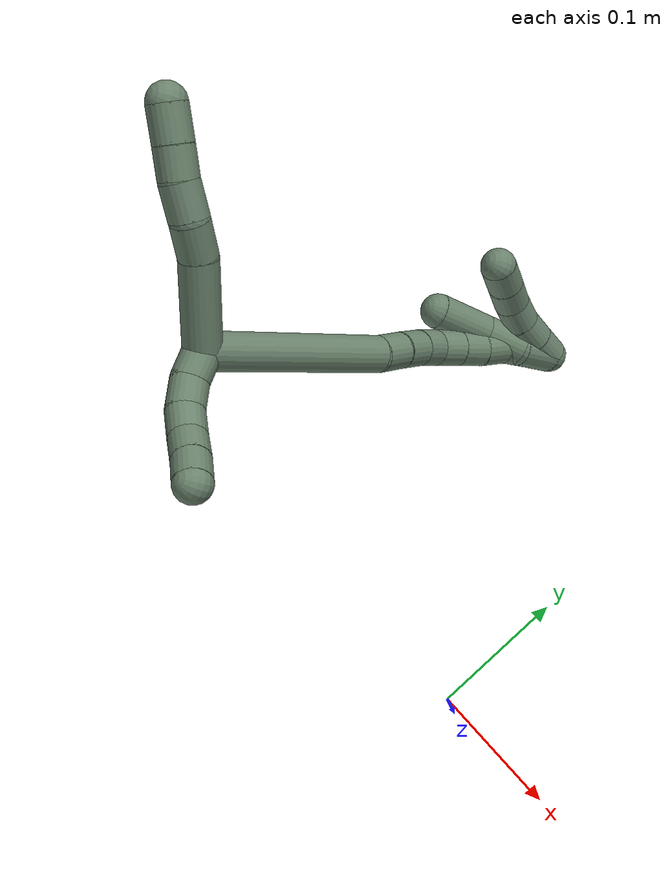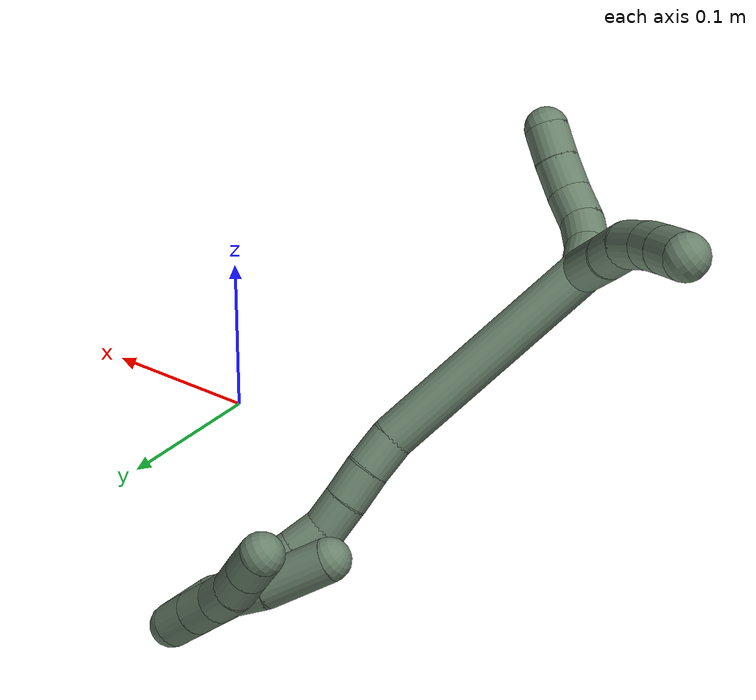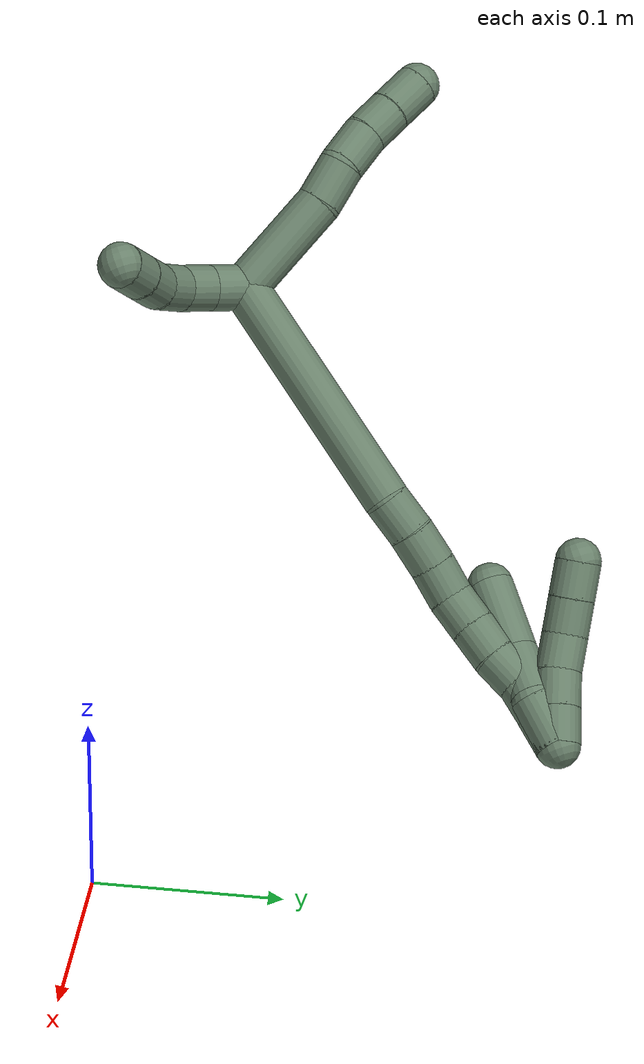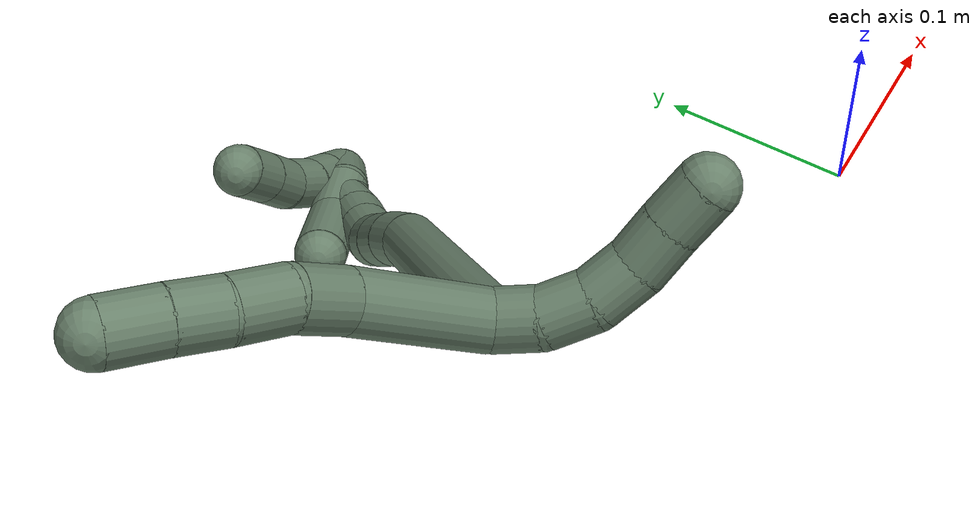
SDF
<sdf version="1.7">
 <world name="default">
  <model name="17">
   <static>0</static>
   <link name="17">
    <collision name="collision-cylinder-e_1_2_8">
     <pose>-0.00424 0.025699 0.015183 -1.03716 -0.141094 0.080609</pose>
     <geometry><cylinder><radius>0.0125</radius><length>0.060297</length></cylinder></geometry>
     <surface>
      <friction><ode><mu>1.16</mu><mu2>1.16</mu2><slip1>0</slip1><slip2>0</slip2></ode></friction>
      <contact><ode><kp>1e+06</kp><kd>1</kd><max_vel>0</max_vel><min_depth>0.001</min_depth></ode></contact>
     </surface>
    </collision>
    <visual name="visual-cylinder-e_1_2_8">
     <pose>-0.00424 0.025699 0.015183 -1.03716 -0.141094 0.080609</pose>
     <geometry><cylinder><radius>0.0125</radius><length>0.060297</length></cylinder></geometry>
     <material><ambient>0.415686 0.509804 0.423529 1</ambient></material>
    </visual>
    <collision name="collision-cylinder-e_2_8_9">
     <pose>-0.010017 0.060214 0.038156 -0.84715 -0.129978 0.058669</pose>
     <geometry><cylinder><radius>0.0125</radius><length>0.02373</length></cylinder></geometry>
     <surface>
      <friction><ode><mu>1.16</mu><mu2>1.16</mu2><slip1>0</slip1><slip2>0</slip2></ode></friction>
      <contact><ode><kp>1e+06</kp><kd>1</kd><max_vel>0</max_vel><min_depth>0.001</min_depth></ode></contact>
     </surface>
    </collision>
    <visual name="visual-cylinder-e_2_8_9">
     <pose>-0.010017 0.060214 0.038156 -0.84715 -0.129978 0.058669</pose>
     <geometry><cylinder><radius>0.0125</radius><length>0.02373</length></cylinder></geometry>
     <material><ambient>0.415686 0.509804 0.423529 1</ambient></material>
    </visual>
    <collision name="collision-cylinder-e_3_9_10">
     <pose>-0.016032 0.077226 0.052712 -0.880683 -0.398728 0.189837</pose>
     <geometry><cylinder><radius>0.0125</radius><length>0.023064</length></cylinder></geometry>
     <surface>
      <friction><ode><mu>1.16</mu><mu2>1.16</mu2><slip1>0</slip1><slip2>0</slip2></ode></friction>
      <contact><ode><kp>1e+06</kp><kd>1</kd><max_vel>0</max_vel><min_depth>0.001</min_depth></ode></contact>
     </surface>
    </collision>
    <visual name="visual-cylinder-e_3_9_10">
     <pose>-0.016032 0.077226 0.052712 -0.880683 -0.398728 0.189837</pose>
     <geometry><cylinder><radius>0.0125</radius><length>0.023064</length></cylinder></geometry>
     <material><ambient>0.415686 0.509804 0.423529 1</ambient></material>
    </visual>
    <collision name="collision-cylinder-e_4_10_11">
     <pose>-0.02476 0.093183 0.064231 -1.02123 -0.436905 0.24744</pose>
     <geometry><cylinder><radius>0.0125</radius><length>0.02009</length></cylinder></geometry>
     <surface>
      <friction><ode><mu>1.16</mu><mu2>1.16</mu2><slip1>0</slip1><slip2>0</slip2></ode></friction>
      <contact><ode><kp>1e+06</kp><kd>1</kd><max_vel>0</max_vel><min_depth>0.001</min_depth></ode></contact>
     </surface>
    </collision>
    <visual name="visual-cylinder-e_4_10_11">
     <pose>-0.02476 0.093183 0.064231 -1.02123 -0.436905 0.24744</pose>
     <geometry><cylinder><radius>0.0125</radius><length>0.02009</length></cylinder></geometry>
     <material><ambient>0.415686 0.509804 0.423529 1</ambient></material>
    </visual>
    <collision name="collision-cylinder-e_5_11_6">
     <pose>-0.034213 0.109582 0.074324 -1.01719 -0.473469 0.267407</pose>
     <geometry><cylinder><radius>0.0125</radius><length>0.022819</length></cylinder></geometry>
     <surface>
      <friction><ode><mu>1.16</mu><mu2>1.16</mu2><slip1>0</slip1><slip2>0</slip2></ode></friction>
      <contact><ode><kp>1e+06</kp><kd>1</kd><max_vel>0</max_vel><min_depth>0.001</min_depth></ode></contact>
     </surface>
    </collision>
    <visual name="visual-cylinder-e_5_11_6">
     <pose>-0.034213 0.109582 0.074324 -1.01719 -0.473469 0.267407</pose>
     <geometry><cylinder><radius>0.0125</radius><length>0.022819</length></cylinder></geometry>
     <material><ambient>0.415686 0.509804 0.423529 1</ambient></material>
    </visual>
    <collision name="collision-cylinder-e_1_2_12">
     <pose>0.005417 -0.008173 0.001964 1.33492 0.572466 0.455856</pose>
     <geometry><cylinder><radius>0.0125</radius><length>0.02</length></cylinder></geometry>
     <surface>
      <friction><ode><mu>1.16</mu><mu2>1.16</mu2><slip1>0</slip1><slip2>0</slip2></ode></friction>
      <contact><ode><kp>1e+06</kp><kd>1</kd><max_vel>0</max_vel><min_depth>0.001</min_depth></ode></contact>
     </surface>
    </collision>
    <visual name="visual-cylinder-e_1_2_12">
     <pose>0.005417 -0.008173 0.001964 1.33492 0.572466 0.455856</pose>
     <geometry><cylinder><radius>0.0125</radius><length>0.02</length></cylinder></geometry>
     <material><ambient>0.415686 0.509804 0.423529 1</ambient></material>
    </visual>
    <collision name="collision-cylinder-e_2_12_13">
     <pose>0.018472 -0.022732 0.004869 1.42464 0.869164 0.762481</pose>
     <geometry><cylinder><radius>0.0125</radius><length>0.02</length></cylinder></geometry>
     <surface>
      <friction><ode><mu>1.16</mu><mu2>1.16</mu2><slip1>0</slip1><slip2>0</slip2></ode></friction>
      <contact><ode><kp>1e+06</kp><kd>1</kd><max_vel>0</max_vel><min_depth>0.001</min_depth></ode></contact>
     </surface>
    </collision>
    <visual name="visual-cylinder-e_2_12_13">
     <pose>0.018472 -0.022732 0.004869 1.42464 0.869164 0.762481</pose>
     <geometry><cylinder><radius>0.0125</radius><length>0.02</length></cylinder></geometry>
     <material><ambient>0.415686 0.509804 0.423529 1</ambient></material>
    </visual>
    <collision name="collision-cylinder-e_3_13_14">
     <pose>0.035342 -0.032951 0.00606 1.50524 1.17647 1.1167</pose>
     <geometry><cylinder><radius>0.0125</radius><length>0.02</length></cylinder></geometry>
     <surface>
      <friction><ode><mu>1.16</mu><mu2>1.16</mu2><slip1>0</slip1><slip2>0</slip2></ode></friction>
      <contact><ode><kp>1e+06</kp><kd>1</kd><max_vel>0</max_vel><min_depth>0.001</min_depth></ode></contact>
     </surface>
    </collision>
    <visual name="visual-cylinder-e_3_13_14">
     <pose>0.035342 -0.032951 0.00606 1.50524 1.17647 1.1167</pose>
     <geometry><cylinder><radius>0.0125</radius><length>0.02</length></cylinder></geometry>
     <material><ambient>0.415686 0.509804 0.423529 1</ambient></material>
    </visual>
    <collision name="collision-cylinder-e_4_14_15">
     <pose>0.054307 -0.038429 0.007921 0.7963 1.33862 0.642473</pose>
     <geometry><cylinder><radius>0.0125</radius><length>0.02</length></cylinder></geometry>
     <surface>
      <friction><ode><mu>1.16</mu><mu2>1.16</mu2><slip1>0</slip1><slip2>0</slip2></ode></friction>
      <contact><ode><kp>1e+06</kp><kd>1</kd><max_vel>0</max_vel><min_depth>0.001</min_depth></ode></contact>
     </surface>
    </collision>
    <visual name="visual-cylinder-e_4_14_15">
     <pose>0.054307 -0.038429 0.007921 0.7963 1.33862 0.642473</pose>
     <geometry><cylinder><radius>0.0125</radius><length>0.02</length></cylinder></geometry>
     <material><ambient>0.415686 0.509804 0.423529 1</ambient></material>
    </visual>
    <collision name="collision-cylinder-e_5_15_5">
     <pose>0.073632 -0.042028 0.011567 0.764555 1.28465 0.584388</pose>
     <geometry><cylinder><radius>0.0125</radius><length>0.02</length></cylinder></geometry>
     <surface>
      <friction><ode><mu>1.16</mu><mu2>1.16</mu2><slip1>0</slip1><slip2>0</slip2></ode></friction>
      <contact><ode><kp>1e+06</kp><kd>1</kd><max_vel>0</max_vel><min_depth>0.001</min_depth></ode></contact>
     </surface>
    </collision>
    <visual name="visual-cylinder-e_5_15_5">
     <pose>0.073632 -0.042028 0.011567 0.764555 1.28465 0.584388</pose>
     <geometry><cylinder><radius>0.0125</radius><length>0.02</length></cylinder></geometry>
     <material><ambient>0.415686 0.509804 0.423529 1</ambient></material>
    </visual>
    <collision name="collision-cylinder-e_1_2_16">
     <pose>-0.009927 0.015729 -0.066116 -2.90803 -0.14504 1.10892</pose>
     <geometry><cylinder><radius>0.0125</radius><length>0.137365</length></cylinder></geometry>
     <surface>
      <friction><ode><mu>1.16</mu><mu2>1.16</mu2><slip1>0</slip1><slip2>0</slip2></ode></friction>
      <contact><ode><kp>1e+06</kp><kd>1</kd><max_vel>0</max_vel><min_depth>0.001</min_depth></ode></contact>
     </surface>
    </collision>
    <visual name="visual-cylinder-e_1_2_16">
     <pose>-0.009927 0.015729 -0.066116 -2.90803 -0.14504 1.10892</pose>
     <geometry><cylinder><radius>0.0125</radius><length>0.137365</length></cylinder></geometry>
     <material><ambient>0.415686 0.509804 0.423529 1</ambient></material>
    </visual>
    <collision name="collision-cylinder-e_2_16_17">
     <pose>-0.023357 0.034191 -0.142005 -2.86892 -0.332447 1.77069</pose>
     <geometry><cylinder><radius>0.0125</radius><length>0.021472</length></cylinder></geometry>
     <surface>
      <friction><ode><mu>1.16</mu><mu2>1.16</mu2><slip1>0</slip1><slip2>0</slip2></ode></friction>
      <contact><ode><kp>1e+06</kp><kd>1</kd><max_vel>0</max_vel><min_depth>0.001</min_depth></ode></contact>
     </surface>
    </collision>
    <visual name="visual-cylinder-e_2_16_17">
     <pose>-0.023357 0.034191 -0.142005 -2.86892 -0.332447 1.77069</pose>
     <geometry><cylinder><radius>0.0125</radius><length>0.021472</length></cylinder></geometry>
     <material><ambient>0.415686 0.509804 0.423529 1</ambient></material>
    </visual>
    <collision name="collision-cylinder-e_3_17_18">
     <pose>-0.030819 0.038771 -0.161346 -2.95087 -0.385863 2.23098</pose>
     <geometry><cylinder><radius>0.0125</radius><length>0.021034</length></cylinder></geometry>
     <surface>
      <friction><ode><mu>1.16</mu><mu2>1.16</mu2><slip1>0</slip1><slip2>0</slip2></ode></friction>
      <contact><ode><kp>1e+06</kp><kd>1</kd><max_vel>0</max_vel><min_depth>0.001</min_depth></ode></contact>
     </surface>
    </collision>
    <visual name="visual-cylinder-e_3_17_18">
     <pose>-0.030819 0.038771 -0.161346 -2.95087 -0.385863 2.23098</pose>
     <geometry><cylinder><radius>0.0125</radius><length>0.021034</length></cylinder></geometry>
     <material><ambient>0.415686 0.509804 0.423529 1</ambient></material>
    </visual>
    <collision name="collision-cylinder-e_4_18_19">
     <pose>-0.038127 0.0419 -0.180278 -3.00556 -0.340519 2.3871</pose>
     <geometry><cylinder><radius>0.0125</radius><length>0.020056</length></cylinder></geometry>
     <surface>
      <friction><ode><mu>1.16</mu><mu2>1.16</mu2><slip1>0</slip1><slip2>0</slip2></ode></friction>
      <contact><ode><kp>1e+06</kp><kd>1</kd><max_vel>0</max_vel><min_depth>0.001</min_depth></ode></contact>
     </surface>
    </collision>
    <visual name="visual-cylinder-e_4_18_19">
     <pose>-0.038127 0.0419 -0.180278 -3.00556 -0.340519 2.3871</pose>
     <geometry><cylinder><radius>0.0125</radius><length>0.020056</length></cylinder></geometry>
     <material><ambient>0.415686 0.509804 0.423529 1</ambient></material>
    </visual>
    <collision name="collision-cylinder-e_5_19_20">
     <pose>-0.042137 0.046052 -0.199224 -2.85053 -0.065978 0.442927</pose>
     <geometry><cylinder><radius>0.0125</radius><length>0.020047</length></cylinder></geometry>
     <surface>
      <friction><ode><mu>1.16</mu><mu2>1.16</mu2><slip1>0</slip1><slip2>0</slip2></ode></friction>
      <contact><ode><kp>1e+06</kp><kd>1</kd><max_vel>0</max_vel><min_depth>0.001</min_depth></ode></contact>
     </surface>
    </collision>
    <visual name="visual-cylinder-e_5_19_20">
     <pose>-0.042137 0.046052 -0.199224 -2.85053 -0.065978 0.442927</pose>
     <geometry><cylinder><radius>0.0125</radius><length>0.020047</length></cylinder></geometry>
     <material><ambient>0.415686 0.509804 0.423529 1</ambient></material>
    </visual>
    <collision name="collision-cylinder-e_6_20_21">
     <pose>-0.043183 0.051811 -0.218383 -2.84868 -0.038542 0.259842</pose>
     <geometry><cylinder><radius>0.0125</radius><length>0.020023</length></cylinder></geometry>
     <surface>
      <friction><ode><mu>1.16</mu><mu2>1.16</mu2><slip1>0</slip1><slip2>0</slip2></ode></friction>
      <contact><ode><kp>1e+06</kp><kd>1</kd><max_vel>0</max_vel><min_depth>0.001</min_depth></ode></contact>
     </surface>
    </collision>
    <visual name="visual-cylinder-e_6_20_21">
     <pose>-0.043183 0.051811 -0.218383 -2.84868 -0.038542 0.259842</pose>
     <geometry><cylinder><radius>0.0125</radius><length>0.020023</length></cylinder></geometry>
     <material><ambient>0.415686 0.509804 0.423529 1</ambient></material>
    </visual>
    <collision name="collision-cylinder-e_7_21_22">
     <pose>-0.044254 0.058699 -0.237101 -2.72908 -0.068537 0.324804</pose>
     <geometry><cylinder><radius>0.0125</radius><length>0.02</length></cylinder></geometry>
     <surface>
      <friction><ode><mu>1.16</mu><mu2>1.16</mu2><slip1>0</slip1><slip2>0</slip2></ode></friction>
      <contact><ode><kp>1e+06</kp><kd>1</kd><max_vel>0</max_vel><min_depth>0.001</min_depth></ode></contact>
     </surface>
    </collision>
    <visual name="visual-cylinder-e_7_21_22">
     <pose>-0.044254 0.058699 -0.237101 -2.72908 -0.068537 0.324804</pose>
     <geometry><cylinder><radius>0.0125</radius><length>0.02</length></cylinder></geometry>
     <material><ambient>0.415686 0.509804 0.423529 1</ambient></material>
    </visual>
    <collision name="collision-cylinder-e_8_22_23">
     <pose>-0.04398 0.06491 -0.255946 -2.91768 0.096068 -0.80811</pose>
     <geometry><cylinder><radius>0.0125</radius><length>0.020001</length></cylinder></geometry>
     <surface>
      <friction><ode><mu>1.16</mu><mu2>1.16</mu2><slip1>0</slip1><slip2>0</slip2></ode></friction>
      <contact><ode><kp>1e+06</kp><kd>1</kd><max_vel>0</max_vel><min_depth>0.001</min_depth></ode></contact>
     </surface>
    </collision>
    <visual name="visual-cylinder-e_8_22_23">
     <pose>-0.04398 0.06491 -0.255946 -2.91768 0.096068 -0.80811</pose>
     <geometry><cylinder><radius>0.0125</radius><length>0.020001</length></cylinder></geometry>
     <material><ambient>0.415686 0.509804 0.423529 1</ambient></material>
    </visual>
    <collision name="collision-cylinder-e_9_23_1">
     <pose>-0.042072 0.069083 -0.275412 -2.94305 0.094959 -0.890263</pose>
     <geometry><cylinder><radius>0.0125</radius><length>0.020001</length></cylinder></geometry>
     <surface>
      <friction><ode><mu>1.16</mu><mu2>1.16</mu2><slip1>0</slip1><slip2>0</slip2></ode></friction>
      <contact><ode><kp>1e+06</kp><kd>1</kd><max_vel>0</max_vel><min_depth>0.001</min_depth></ode></contact>
     </surface>
    </collision>
    <visual name="visual-cylinder-e_9_23_1">
     <pose>-0.042072 0.069083 -0.275412 -2.94305 0.094959 -0.890263</pose>
     <geometry><cylinder><radius>0.0125</radius><length>0.020001</length></cylinder></geometry>
     <material><ambient>0.415686 0.509804 0.423529 1</ambient></material>
    </visual>
    <collision name="collision-cylinder-e_1_1_24">
     <pose>-0.041226 0.068886 -0.271018 0.151546 -0.007122 -0.000541</pose>
     <geometry><cylinder><radius>0.0125</radius><length>0.028637</length></cylinder></geometry>
     <surface>
      <friction><ode><mu>1.16</mu><mu2>1.16</mu2><slip1>0</slip1><slip2>0</slip2></ode></friction>
      <contact><ode><kp>1e+06</kp><kd>1</kd><max_vel>0</max_vel><min_depth>0.001</min_depth></ode></contact>
     </surface>
    </collision>
    <visual name="visual-cylinder-e_1_1_24">
     <pose>-0.041226 0.068886 -0.271018 0.151546 -0.007122 -0.000541</pose>
     <geometry><cylinder><radius>0.0125</radius><length>0.028637</length></cylinder></geometry>
     <material><ambient>0.415686 0.509804 0.423529 1</ambient></material>
    </visual>
    <collision name="collision-cylinder-e_2_24_25">
     <pose>-0.046518 0.065529 -0.24267 0.084008 -0.349377 -0.014835</pose>
     <geometry><cylinder><radius>0.0125</radius><length>0.030323</length></cylinder></geometry>
     <surface>
      <friction><ode><mu>1.16</mu><mu2>1.16</mu2><slip1>0</slip1><slip2>0</slip2></ode></friction>
      <contact><ode><kp>1e+06</kp><kd>1</kd><max_vel>0</max_vel><min_depth>0.001</min_depth></ode></contact>
     </surface>
    </collision>
    <visual name="visual-cylinder-e_2_24_25">
     <pose>-0.046518 0.065529 -0.24267 0.084008 -0.349377 -0.014835</pose>
     <geometry><cylinder><radius>0.0125</radius><length>0.030323</length></cylinder></geometry>
     <material><ambient>0.415686 0.509804 0.423529 1</ambient></material>
    </visual>
    <collision name="collision-cylinder-e_3_25_4">
     <pose>-0.055255 0.063585 -0.208277 0.037043 -0.173752 -0.003227</pose>
     <geometry><cylinder><radius>0.0125</radius><length>0.041041</length></cylinder></geometry>
     <surface>
      <friction><ode><mu>1.16</mu><mu2>1.16</mu2><slip1>0</slip1><slip2>0</slip2></ode></friction>
      <contact><ode><kp>1e+06</kp><kd>1</kd><max_vel>0</max_vel><min_depth>0.001</min_depth></ode></contact>
     </surface>
    </collision>
    <visual name="visual-cylinder-e_3_25_4">
     <pose>-0.055255 0.063585 -0.208277 0.037043 -0.173752 -0.003227</pose>
     <geometry><cylinder><radius>0.0125</radius><length>0.041041</length></cylinder></geometry>
     <material><ambient>0.415686 0.509804 0.423529 1</ambient></material>
    </visual>
    <collision name="collision-cylinder-e_1_1_26">
     <pose>-0.042115 0.074189 -0.27573 -0.321192 -0.099265 0.016093</pose>
     <geometry><cylinder><radius>0.0125</radius><length>0.02</length></cylinder></geometry>
     <surface>
      <friction><ode><mu>1.16</mu><mu2>1.16</mu2><slip1>0</slip1><slip2>0</slip2></ode></friction>
      <contact><ode><kp>1e+06</kp><kd>1</kd><max_vel>0</max_vel><min_depth>0.001</min_depth></ode></contact>
     </surface>
    </collision>
    <visual name="visual-cylinder-e_1_1_26">
     <pose>-0.042115 0.074189 -0.27573 -0.321192 -0.099265 0.016093</pose>
     <geometry><cylinder><radius>0.0125</radius><length>0.02</length></cylinder></geometry>
     <material><ambient>0.415686 0.509804 0.423529 1</ambient></material>
    </visual>
    <collision name="collision-cylinder-e_2_26_27">
     <pose>-0.044294 0.08061 -0.256917 -0.336646 -0.119089 0.02026</pose>
     <geometry><cylinder><radius>0.0125</radius><length>0.02</length></cylinder></geometry>
     <surface>
      <friction><ode><mu>1.16</mu><mu2>1.16</mu2><slip1>0</slip1><slip2>0</slip2></ode></friction>
      <contact><ode><kp>1e+06</kp><kd>1</kd><max_vel>0</max_vel><min_depth>0.001</min_depth></ode></contact>
     </surface>
    </collision>
    <visual name="visual-cylinder-e_2_26_27">
     <pose>-0.044294 0.08061 -0.256917 -0.336646 -0.119089 0.02026</pose>
     <geometry><cylinder><radius>0.0125</radius><length>0.02</length></cylinder></geometry>
     <material><ambient>0.415686 0.509804 0.423529 1</ambient></material>
    </visual>
    <collision name="collision-cylinder-e_3_27_28">
     <pose>-0.046186 0.088723 -0.238819 -0.505871 -0.070467 0.018221</pose>
     <geometry><cylinder><radius>0.0125</radius><length>0.02</length></cylinder></geometry>
     <surface>
      <friction><ode><mu>1.16</mu><mu2>1.16</mu2><slip1>0</slip1><slip2>0</slip2></ode></friction>
      <contact><ode><kp>1e+06</kp><kd>1</kd><max_vel>0</max_vel><min_depth>0.001</min_depth></ode></contact>
     </surface>
    </collision>
    <visual name="visual-cylinder-e_3_27_28">
     <pose>-0.046186 0.088723 -0.238819 -0.505871 -0.070467 0.018221</pose>
     <geometry><cylinder><radius>0.0125</radius><length>0.02</length></cylinder></geometry>
     <material><ambient>0.415686 0.509804 0.423529 1</ambient></material>
    </visual>
    <collision name="collision-cylinder-e_4_28_29">
     <pose>-0.045602 0.098733 -0.221635 -0.549172 0.129217 -0.036447</pose>
     <geometry><cylinder><radius>0.0125</radius><length>0.02</length></cylinder></geometry>
     <surface>
      <friction><ode><mu>1.16</mu><mu2>1.16</mu2><slip1>0</slip1><slip2>0</slip2></ode></friction>
      <contact><ode><kp>1e+06</kp><kd>1</kd><max_vel>0</max_vel><min_depth>0.001</min_depth></ode></contact>
     </surface>
    </collision>
    <visual name="visual-cylinder-e_4_28_29">
     <pose>-0.045602 0.098733 -0.221635 -0.549172 0.129217 -0.036447</pose>
     <geometry><cylinder><radius>0.0125</radius><length>0.02</length></cylinder></geometry>
     <material><ambient>0.415686 0.509804 0.423529 1</ambient></material>
    </visual>
    <collision name="collision-cylinder-e_5_29_3">
     <pose>-0.043199 0.109077 -0.204688 -0.546851 0.111617 -0.031333</pose>
     <geometry><cylinder><radius>0.0125</radius><length>0.02</length></cylinder></geometry>
     <surface>
      <friction><ode><mu>1.16</mu><mu2>1.16</mu2><slip1>0</slip1><slip2>0</slip2></ode></friction>
      <contact><ode><kp>1e+06</kp><kd>1</kd><max_vel>0</max_vel><min_depth>0.001</min_depth></ode></contact>
     </surface>
    </collision>
    <visual name="visual-cylinder-e_5_29_3">
     <pose>-0.043199 0.109077 -0.204688 -0.546851 0.111617 -0.031333</pose>
     <geometry><cylinder><radius>0.0125</radius><length>0.02</length></cylinder></geometry>
     <material><ambient>0.415686 0.509804 0.423529 1</ambient></material>
    </visual>
    <collision name="collision-sphere-3">
     <pose>-0.042085 0.114245 -0.196199 0 -0 0</pose>
     <geometry><sphere><radius>0.0125</radius></sphere></geometry>
     <surface>
      <friction><ode><mu>1.16</mu><mu2>1.16</mu2><slip1>0</slip1><slip2>0</slip2></ode></friction>
      <contact><ode><kp>1e+06</kp><kd>1</kd><max_vel>0</max_vel><min_depth>0.001</min_depth></ode></contact>
     </surface>
    </collision>
    <visual name="visual-sphere-3">
     <pose>-0.042085 0.114245 -0.196199 0 -0 0</pose>
     <geometry><sphere><radius>0.0125</radius></sphere></geometry>
     <material><ambient>0.415686 0.509804 0.423529 1</ambient></material>
    </visual>
    <collision name="collision-sphere-29">
     <pose>-0.044313 0.10391 -0.213176 0 -0 0</pose>
     <geometry><sphere><radius>0.0125</radius></sphere></geometry>
     <surface>
      <friction><ode><mu>1.16</mu><mu2>1.16</mu2><slip1>0</slip1><slip2>0</slip2></ode></friction>
      <contact><ode><kp>1e+06</kp><kd>1</kd><max_vel>0</max_vel><min_depth>0.001</min_depth></ode></contact>
     </surface>
    </collision>
    <visual name="visual-sphere-29">
     <pose>-0.044313 0.10391 -0.213176 0 -0 0</pose>
     <geometry><sphere><radius>0.0125</radius></sphere></geometry>
     <material><ambient>0.415686 0.509804 0.423529 1</ambient></material>
    </visual>
    <collision name="collision-sphere-28">
     <pose>-0.04689 0.093557 -0.230093 0 -0 0</pose>
     <geometry><sphere><radius>0.0125</radius></sphere></geometry>
     <surface>
      <friction><ode><mu>1.16</mu><mu2>1.16</mu2><slip1>0</slip1><slip2>0</slip2></ode></friction>
      <contact><ode><kp>1e+06</kp><kd>1</kd><max_vel>0</max_vel><min_depth>0.001</min_depth></ode></contact>
     </surface>
    </collision>
    <visual name="visual-sphere-28">
     <pose>-0.04689 0.093557 -0.230093 0 -0 0</pose>
     <geometry><sphere><radius>0.0125</radius></sphere></geometry>
     <material><ambient>0.415686 0.509804 0.423529 1</ambient></material>
    </visual>
    <collision name="collision-sphere-27">
     <pose>-0.045482 0.08389 -0.247545 0 -0 0</pose>
     <geometry><sphere><radius>0.0125</radius></sphere></geometry>
     <surface>
      <friction><ode><mu>1.16</mu><mu2>1.16</mu2><slip1>0</slip1><slip2>0</slip2></ode></friction>
      <contact><ode><kp>1e+06</kp><kd>1</kd><max_vel>0</max_vel><min_depth>0.001</min_depth></ode></contact>
     </surface>
    </collision>
    <visual name="visual-sphere-27">
     <pose>-0.045482 0.08389 -0.247545 0 -0 0</pose>
     <geometry><sphere><radius>0.0125</radius></sphere></geometry>
     <material><ambient>0.415686 0.509804 0.423529 1</ambient></material>
    </visual>
    <collision name="collision-sphere-26">
     <pose>-0.043106 0.07733 -0.266288 0 -0 0</pose>
     <geometry><sphere><radius>0.0125</radius></sphere></geometry>
     <surface>
      <friction><ode><mu>1.16</mu><mu2>1.16</mu2><slip1>0</slip1><slip2>0</slip2></ode></friction>
      <contact><ode><kp>1e+06</kp><kd>1</kd><max_vel>0</max_vel><min_depth>0.001</min_depth></ode></contact>
     </surface>
    </collision>
    <visual name="visual-sphere-26">
     <pose>-0.043106 0.07733 -0.266288 0 -0 0</pose>
     <geometry><sphere><radius>0.0125</radius></sphere></geometry>
     <material><ambient>0.415686 0.509804 0.423529 1</ambient></material>
    </visual>
    <collision name="collision-sphere-4">
     <pose>-0.058803 0.062836 -0.188079 0 -0 0</pose>
     <geometry><sphere><radius>0.0125</radius></sphere></geometry>
     <surface>
      <friction><ode><mu>1.16</mu><mu2>1.16</mu2><slip1>0</slip1><slip2>0</slip2></ode></friction>
      <contact><ode><kp>1e+06</kp><kd>1</kd><max_vel>0</max_vel><min_depth>0.001</min_depth></ode></contact>
     </surface>
    </collision>
    <visual name="visual-sphere-4">
     <pose>-0.058803 0.062836 -0.188079 0 -0 0</pose>
     <geometry><sphere><radius>0.0125</radius></sphere></geometry>
     <material><ambient>0.415686 0.509804 0.423529 1</ambient></material>
    </visual>
    <collision name="collision-sphere-25">
     <pose>-0.051708 0.064333 -0.228474 0 -0 0</pose>
     <geometry><sphere><radius>0.0125</radius></sphere></geometry>
     <surface>
      <friction><ode><mu>1.16</mu><mu2>1.16</mu2><slip1>0</slip1><slip2>0</slip2></ode></friction>
      <contact><ode><kp>1e+06</kp><kd>1</kd><max_vel>0</max_vel><min_depth>0.001</min_depth></ode></contact>
     </surface>
    </collision>
    <visual name="visual-sphere-25">
     <pose>-0.051708 0.064333 -0.228474 0 -0 0</pose>
     <geometry><sphere><radius>0.0125</radius></sphere></geometry>
     <material><ambient>0.415686 0.509804 0.423529 1</ambient></material>
    </visual>
    <collision name="collision-sphere-24">
     <pose>-0.041328 0.066724 -0.256865 0 -0 0</pose>
     <geometry><sphere><radius>0.0125</radius></sphere></geometry>
     <surface>
      <friction><ode><mu>1.16</mu><mu2>1.16</mu2><slip1>0</slip1><slip2>0</slip2></ode></friction>
      <contact><ode><kp>1e+06</kp><kd>1</kd><max_vel>0</max_vel><min_depth>0.001</min_depth></ode></contact>
     </surface>
    </collision>
    <visual name="visual-sphere-24">
     <pose>-0.041328 0.066724 -0.256865 0 -0 0</pose>
     <geometry><sphere><radius>0.0125</radius></sphere></geometry>
     <material><ambient>0.415686 0.509804 0.423529 1</ambient></material>
    </visual>
    <collision name="collision-sphere-1">
     <pose>-0.041124 0.071047 -0.285172 0 -0 0</pose>
     <geometry><sphere><radius>0.0125</radius></sphere></geometry>
     <surface>
      <friction><ode><mu>1.16</mu><mu2>1.16</mu2><slip1>0</slip1><slip2>0</slip2></ode></friction>
      <contact><ode><kp>1e+06</kp><kd>1</kd><max_vel>0</max_vel><min_depth>0.001</min_depth></ode></contact>
     </surface>
    </collision>
    <visual name="visual-sphere-1">
     <pose>-0.041124 0.071047 -0.285172 0 -0 0</pose>
     <geometry><sphere><radius>0.0125</radius></sphere></geometry>
     <material><ambient>0.415686 0.509804 0.423529 1</ambient></material>
    </visual>
    <collision name="collision-sphere-23">
     <pose>-0.04302 0.06712 -0.265652 0 -0 0</pose>
     <geometry><sphere><radius>0.0125</radius></sphere></geometry>
     <surface>
      <friction><ode><mu>1.16</mu><mu2>1.16</mu2><slip1>0</slip1><slip2>0</slip2></ode></friction>
      <contact><ode><kp>1e+06</kp><kd>1</kd><max_vel>0</max_vel><min_depth>0.001</min_depth></ode></contact>
     </surface>
    </collision>
    <visual name="visual-sphere-23">
     <pose>-0.04302 0.06712 -0.265652 0 -0 0</pose>
     <geometry><sphere><radius>0.0125</radius></sphere></geometry>
     <material><ambient>0.415686 0.509804 0.423529 1</ambient></material>
    </visual>
    <collision name="collision-sphere-22">
     <pose>-0.044939 0.062699 -0.246241 0 -0 0</pose>
     <geometry><sphere><radius>0.0125</radius></sphere></geometry>
     <surface>
      <friction><ode><mu>1.16</mu><mu2>1.16</mu2><slip1>0</slip1><slip2>0</slip2></ode></friction>
      <contact><ode><kp>1e+06</kp><kd>1</kd><max_vel>0</max_vel><min_depth>0.001</min_depth></ode></contact>
     </surface>
    </collision>
    <visual name="visual-sphere-22">
     <pose>-0.044939 0.062699 -0.246241 0 -0 0</pose>
     <geometry><sphere><radius>0.0125</radius></sphere></geometry>
     <material><ambient>0.415686 0.509804 0.423529 1</ambient></material>
    </visual>
    <collision name="collision-sphere-21">
     <pose>-0.043569 0.0547 -0.227961 0 -0 0</pose>
     <geometry><sphere><radius>0.0125</radius></sphere></geometry>
     <surface>
      <friction><ode><mu>1.16</mu><mu2>1.16</mu2><slip1>0</slip1><slip2>0</slip2></ode></friction>
      <contact><ode><kp>1e+06</kp><kd>1</kd><max_vel>0</max_vel><min_depth>0.001</min_depth></ode></contact>
     </surface>
    </collision>
    <visual name="visual-sphere-21">
     <pose>-0.043569 0.0547 -0.227961 0 -0 0</pose>
     <geometry><sphere><radius>0.0125</radius></sphere></geometry>
     <material><ambient>0.415686 0.509804 0.423529 1</ambient></material>
    </visual>
    <collision name="collision-sphere-6">
     <pose>-0.039415 0.11822 0.079662 0 -0 0</pose>
     <geometry><sphere><radius>0.0125</radius></sphere></geometry>
     <surface>
      <friction><ode><mu>1.16</mu><mu2>1.16</mu2><slip1>0</slip1><slip2>0</slip2></ode></friction>
      <contact><ode><kp>1e+06</kp><kd>1</kd><max_vel>0</max_vel><min_depth>0.001</min_depth></ode></contact>
     </surface>
    </collision>
    <visual name="visual-sphere-6">
     <pose>-0.039415 0.11822 0.079662 0 -0 0</pose>
     <geometry><sphere><radius>0.0125</radius></sphere></geometry>
     <material><ambient>0.415686 0.509804 0.423529 1</ambient></material>
    </visual>
    <collision name="collision-sphere-11">
     <pose>-0.029011 0.100944 0.068985 0 -0 0</pose>
     <geometry><sphere><radius>0.0125</radius></sphere></geometry>
     <surface>
      <friction><ode><mu>1.16</mu><mu2>1.16</mu2><slip1>0</slip1><slip2>0</slip2></ode></friction>
      <contact><ode><kp>1e+06</kp><kd>1</kd><max_vel>0</max_vel><min_depth>0.001</min_depth></ode></contact>
     </surface>
    </collision>
    <visual name="visual-sphere-11">
     <pose>-0.029011 0.100944 0.068985 0 -0 0</pose>
     <geometry><sphere><radius>0.0125</radius></sphere></geometry>
     <material><ambient>0.415686 0.509804 0.423529 1</ambient></material>
    </visual>
    <collision name="collision-sphere-10">
     <pose>-0.02051 0.085422 0.059477 0 -0 0</pose>
     <geometry><sphere><radius>0.0125</radius></sphere></geometry>
     <surface>
      <friction><ode><mu>1.16</mu><mu2>1.16</mu2><slip1>0</slip1><slip2>0</slip2></ode></friction>
      <contact><ode><kp>1e+06</kp><kd>1</kd><max_vel>0</max_vel><min_depth>0.001</min_depth></ode></contact>
     </surface>
    </collision>
    <visual name="visual-sphere-10">
     <pose>-0.02051 0.085422 0.059477 0 -0 0</pose>
     <geometry><sphere><radius>0.0125</radius></sphere></geometry>
     <material><ambient>0.415686 0.509804 0.423529 1</ambient></material>
    </visual>
    <collision name="collision-sphere-9">
     <pose>-0.011555 0.06903 0.045946 0 -0 0</pose>
     <geometry><sphere><radius>0.0125</radius></sphere></geometry>
     <surface>
      <friction><ode><mu>1.16</mu><mu2>1.16</mu2><slip1>0</slip1><slip2>0</slip2></ode></friction>
      <contact><ode><kp>1e+06</kp><kd>1</kd><max_vel>0</max_vel><min_depth>0.001</min_depth></ode></contact>
     </surface>
    </collision>
    <visual name="visual-sphere-9">
     <pose>-0.011555 0.06903 0.045946 0 -0 0</pose>
     <geometry><sphere><radius>0.0125</radius></sphere></geometry>
     <material><ambient>0.415686 0.509804 0.423529 1</ambient></material>
    </visual>
    <collision name="collision-sphere-2">
     <geometry><sphere><radius>0.0125</radius></sphere></geometry>
     <surface>
      <friction><ode><mu>1.16</mu><mu2>1.16</mu2><slip1>0</slip1><slip2>0</slip2></ode></friction>
      <contact><ode><kp>1e+06</kp><kd>1</kd><max_vel>0</max_vel><min_depth>0.001</min_depth></ode></contact>
     </surface>
    </collision>
    <visual name="visual-sphere-2">
     <geometry><sphere><radius>0.0125</radius></sphere></geometry>
     <material><ambient>0.415686 0.509804 0.423529 1</ambient></material>
    </visual>
    <collision name="collision-sphere-19">
     <pose>-0.041476 0.043182 -0.189643 0 -0 0</pose>
     <geometry><sphere><radius>0.0125</radius></sphere></geometry>
     <surface>
      <friction><ode><mu>1.16</mu><mu2>1.16</mu2><slip1>0</slip1><slip2>0</slip2></ode></friction>
      <contact><ode><kp>1e+06</kp><kd>1</kd><max_vel>0</max_vel><min_depth>0.001</min_depth></ode></contact>
     </surface>
    </collision>
    <visual name="visual-sphere-19">
     <pose>-0.041476 0.043182 -0.189643 0 -0 0</pose>
     <geometry><sphere><radius>0.0125</radius></sphere></geometry>
     <material><ambient>0.415686 0.509804 0.423529 1</ambient></material>
    </visual>
    <collision name="collision-sphere-8">
     <pose>-0.008479 0.051397 0.030366 0 -0 0</pose>
     <geometry><sphere><radius>0.0125</radius></sphere></geometry>
     <surface>
      <friction><ode><mu>1.16</mu><mu2>1.16</mu2><slip1>0</slip1><slip2>0</slip2></ode></friction>
      <contact><ode><kp>1e+06</kp><kd>1</kd><max_vel>0</max_vel><min_depth>0.001</min_depth></ode></contact>
     </surface>
    </collision>
    <visual name="visual-sphere-8">
     <pose>-0.008479 0.051397 0.030366 0 -0 0</pose>
     <geometry><sphere><radius>0.0125</radius></sphere></geometry>
     <material><ambient>0.415686 0.509804 0.423529 1</ambient></material>
    </visual>
    <collision name="collision-sphere-12">
     <pose>0.010834 -0.016346 0.003929 0 -0 0</pose>
     <geometry><sphere><radius>0.0125</radius></sphere></geometry>
     <surface>
      <friction><ode><mu>1.16</mu><mu2>1.16</mu2><slip1>0</slip1><slip2>0</slip2></ode></friction>
      <contact><ode><kp>1e+06</kp><kd>1</kd><max_vel>0</max_vel><min_depth>0.001</min_depth></ode></contact>
     </surface>
    </collision>
    <visual name="visual-sphere-12">
     <pose>0.010834 -0.016346 0.003929 0 -0 0</pose>
     <geometry><sphere><radius>0.0125</radius></sphere></geometry>
     <material><ambient>0.415686 0.509804 0.423529 1</ambient></material>
    </visual>
    <collision name="collision-sphere-13">
     <pose>0.02611 -0.029118 0.005809 0 -0 0</pose>
     <geometry><sphere><radius>0.0125</radius></sphere></geometry>
     <surface>
      <friction><ode><mu>1.16</mu><mu2>1.16</mu2><slip1>0</slip1><slip2>0</slip2></ode></friction>
      <contact><ode><kp>1e+06</kp><kd>1</kd><max_vel>0</max_vel><min_depth>0.001</min_depth></ode></contact>
     </surface>
    </collision>
    <visual name="visual-sphere-13">
     <pose>0.02611 -0.029118 0.005809 0 -0 0</pose>
     <geometry><sphere><radius>0.0125</radius></sphere></geometry>
     <material><ambient>0.415686 0.509804 0.423529 1</ambient></material>
    </visual>
    <collision name="collision-sphere-14">
     <pose>0.044575 -0.036785 0.006312 0 -0 0</pose>
     <geometry><sphere><radius>0.0125</radius></sphere></geometry>
     <surface>
      <friction><ode><mu>1.16</mu><mu2>1.16</mu2><slip1>0</slip1><slip2>0</slip2></ode></friction>
      <contact><ode><kp>1e+06</kp><kd>1</kd><max_vel>0</max_vel><min_depth>0.001</min_depth></ode></contact>
     </surface>
    </collision>
    <visual name="visual-sphere-14">
     <pose>0.044575 -0.036785 0.006312 0 -0 0</pose>
     <geometry><sphere><radius>0.0125</radius></sphere></geometry>
     <material><ambient>0.415686 0.509804 0.423529 1</ambient></material>
    </visual>
    <collision name="collision-sphere-15">
     <pose>0.064038 -0.040074 0.00953 0 -0 0</pose>
     <geometry><sphere><radius>0.0125</radius></sphere></geometry>
     <surface>
      <friction><ode><mu>1.16</mu><mu2>1.16</mu2><slip1>0</slip1><slip2>0</slip2></ode></friction>
      <contact><ode><kp>1e+06</kp><kd>1</kd><max_vel>0</max_vel><min_depth>0.001</min_depth></ode></contact>
     </surface>
    </collision>
    <visual name="visual-sphere-15">
     <pose>0.064038 -0.040074 0.00953 0 -0 0</pose>
     <geometry><sphere><radius>0.0125</radius></sphere></geometry>
     <material><ambient>0.415686 0.509804 0.423529 1</ambient></material>
    </visual>
    <collision name="collision-sphere-5">
     <pose>0.083225 -0.043982 0.013604 0 -0 0</pose>
     <geometry><sphere><radius>0.0125</radius></sphere></geometry>
     <surface>
      <friction><ode><mu>1.16</mu><mu2>1.16</mu2><slip1>0</slip1><slip2>0</slip2></ode></friction>
      <contact><ode><kp>1e+06</kp><kd>1</kd><max_vel>0</max_vel><min_depth>0.001</min_depth></ode></contact>
     </surface>
    </collision>
    <visual name="visual-sphere-5">
     <pose>0.083225 -0.043982 0.013604 0 -0 0</pose>
     <geometry><sphere><radius>0.0125</radius></sphere></geometry>
     <material><ambient>0.415686 0.509804 0.423529 1</ambient></material>
    </visual>
    <collision name="collision-sphere-16">
     <pose>-0.019854 0.031458 -0.132232 0 -0 0</pose>
     <geometry><sphere><radius>0.0125</radius></sphere></geometry>
     <surface>
      <friction><ode><mu>1.16</mu><mu2>1.16</mu2><slip1>0</slip1><slip2>0</slip2></ode></friction>
      <contact><ode><kp>1e+06</kp><kd>1</kd><max_vel>0</max_vel><min_depth>0.001</min_depth></ode></contact>
     </surface>
    </collision>
    <visual name="visual-sphere-16">
     <pose>-0.019854 0.031458 -0.132232 0 -0 0</pose>
     <geometry><sphere><radius>0.0125</radius></sphere></geometry>
     <material><ambient>0.415686 0.509804 0.423529 1</ambient></material>
    </visual>
    <collision name="collision-sphere-17">
     <pose>-0.026861 0.036924 -0.151779 0 -0 0</pose>
     <geometry><sphere><radius>0.0125</radius></sphere></geometry>
     <surface>
      <friction><ode><mu>1.16</mu><mu2>1.16</mu2><slip1>0</slip1><slip2>0</slip2></ode></friction>
      <contact><ode><kp>1e+06</kp><kd>1</kd><max_vel>0</max_vel><min_depth>0.001</min_depth></ode></contact>
     </surface>
    </collision>
    <visual name="visual-sphere-17">
     <pose>-0.026861 0.036924 -0.151779 0 -0 0</pose>
     <geometry><sphere><radius>0.0125</radius></sphere></geometry>
     <material><ambient>0.415686 0.509804 0.423529 1</ambient></material>
    </visual>
    <collision name="collision-sphere-18">
     <pose>-0.034778 0.040618 -0.170913 0 -0 0</pose>
     <geometry><sphere><radius>0.0125</radius></sphere></geometry>
     <surface>
      <friction><ode><mu>1.16</mu><mu2>1.16</mu2><slip1>0</slip1><slip2>0</slip2></ode></friction>
      <contact><ode><kp>1e+06</kp><kd>1</kd><max_vel>0</max_vel><min_depth>0.001</min_depth></ode></contact>
     </surface>
    </collision>
    <visual name="visual-sphere-18">
     <pose>-0.034778 0.040618 -0.170913 0 -0 0</pose>
     <geometry><sphere><radius>0.0125</radius></sphere></geometry>
     <material><ambient>0.415686 0.509804 0.423529 1</ambient></material>
    </visual>
    <collision name="collision-sphere-20">
     <pose>-0.042798 0.048922 -0.208805 0 -0 0</pose>
     <geometry><sphere><radius>0.0125</radius></sphere></geometry>
     <surface>
      <friction><ode><mu>1.16</mu><mu2>1.16</mu2><slip1>0</slip1><slip2>0</slip2></ode></friction>
      <contact><ode><kp>1e+06</kp><kd>1</kd><max_vel>0</max_vel><min_depth>0.001</min_depth></ode></contact>
     </surface>
    </collision>
    <visual name="visual-sphere-20">
     <pose>-0.042798 0.048922 -0.208805 0 -0 0</pose>
     <geometry><sphere><radius>0.0125</radius></sphere></geometry>
     <material><ambient>0.415686 0.509804 0.423529 1</ambient></material>
    </visual>
    <inertial>
     <pose>-0.020371 0.042943 -0.111772 0 -0 0</pose>
     <mass>0.75</mass>
     <inertia><ixx>0.000354</ixx><ixy>0</ixy><ixz>0</ixz><iyy>0.000167</iyy><iyz>0</iyz><izz>-4e-05</izz></inertia>
    </inertial>
   </link>
   <pose>-0.274791 0.038613 0.196957 0.541532 -0.717716 -0.166145</pose>
  </model>
 </world>
</sdf>
